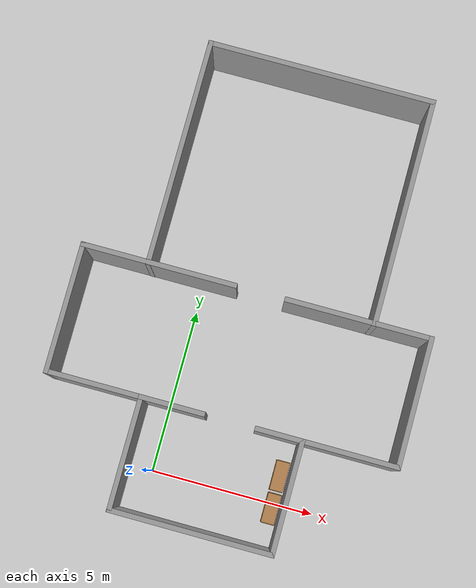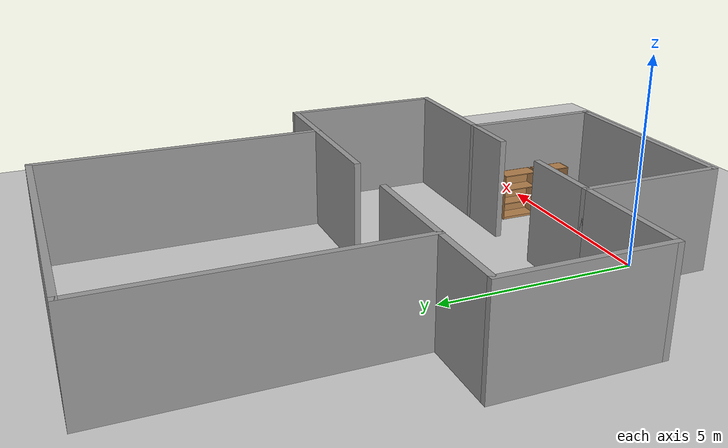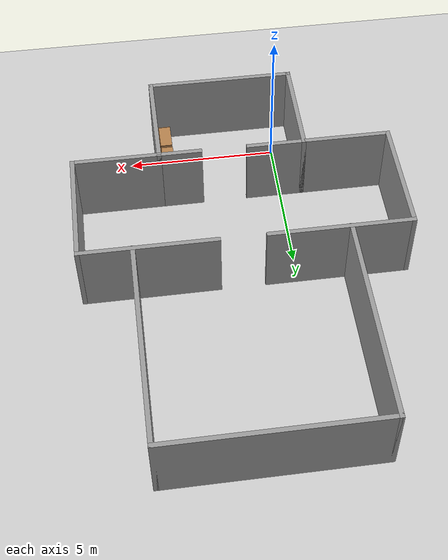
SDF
<sdf version="1.7">
 <world name="default">
  <light name="sun" type="directional">
   <pose>0 0 10 0 -0 0</pose>
   <diffuse>0.8 0.8 0.8 1</diffuse>
   <specular>0.2 0.2 0.2 1</specular>
   <attenuation>
    <range>1000</range>
    <constant>0.9</constant>
    <linear>0.01</linear>
    <quadratic>0.001</quadratic>
   </attenuation>
   <direction>-0.5 0.1 -0.9</direction>
   <spot><inner_angle>0</inner_angle><outer_angle>0</outer_angle><falloff>0</falloff></spot>
  </light>
  <model name="ground_plane">
   <static>1</static>
   <link name="link">
    <collision name="collision">
     <geometry><plane><normal>0 0 1</normal><size>100 100</size></plane></geometry>
     <surface><friction><ode><mu>100</mu><mu2>50</mu2></ode></friction></surface>
    </collision>
    <visual name="visual">
     <cast_shadows>0</cast_shadows>
     <geometry><plane><normal>0 0 1</normal><size>100 100</size></plane></geometry>
     <material>
      <script><uri>file://media/materials/scripts/gazebo.material</uri><name>Gazebo/Grey</name></script>
     </material>
    </visual>
   </link>
  </model>
  <gravity>0 0 -9.8</gravity>
  <magnetic_field>6e-06 2.3e-05 -4.2e-05</magnetic_field>
  <atmosphere type="adiabatic"/>
  <physics type="ode">
   <max_step_size>0.0005</max_step_size>
   <real_time_factor>1</real_time_factor>
   <real_time_update_rate>500</real_time_update_rate>
  </physics>
  <scene><ambient>0.4 0.4 0.4 1</ambient><background>0.7 0.7 0.7 1</background><shadows>1</shadows></scene>
  <spherical_coordinates>
   <surface_model>EARTH_WGS84</surface_model>
   <latitude_deg>0</latitude_deg>
   <longitude_deg>0</longitude_deg>
   <elevation>0</elevation>
   <heading_deg>0</heading_deg>
  </spherical_coordinates>
  <model name="conference_room3">
   <pose>1.663 5.64665 0 0 -0 0</pose>
   <link name="Wall_0">
    <collision name="Wall_0_Collision">
     <geometry><box><size>4.97355 0.15 2.5</size></box></geometry>
     <pose>0 0 1.25 0 -0 0</pose>
    </collision>
    <visual name="Wall_0_Visual">
     <pose>0 0 1.25 0 -0 0</pose>
     <geometry><box><size>4.97355 0.15 2.5</size></box></geometry>
     <material>
      <script><uri>file://media/materials/scripts/gazebo.material</uri><name>Gazebo/Grey</name></script>
      <ambient>1 1 1 1</ambient>
     </material>
     <meta><layer>0</layer></meta>
    </visual>
    <pose>0.006612 -7.02097 0 0 -0 0</pose>
   </link>
   <link name="Wall_10">
    <collision name="Wall_10_Collision">
     <geometry><box><size>4 0.15 2.5</size></box></geometry>
     <pose>0 0 1.25 0 -0 0</pose>
    </collision>
    <visual name="Wall_10_Visual">
     <pose>0 0 1.25 0 -0 0</pose>
     <geometry><box><size>4 0.15 2.5</size></box></geometry>
     <material>
      <script><uri>file://media/materials/scripts/gazebo.material</uri><name>Gazebo/Grey</name></script>
      <ambient>1 1 1 1</ambient>
     </material>
     <meta><layer>0</layer></meta>
    </visual>
    <pose>-5.26839 -1.74597 0 0 -0 1.5708</pose>
   </link>
   <link name="Wall_11">
    <collision name="Wall_11_Collision">
     <geometry><box><size>4.75 0.15 2.5</size></box></geometry>
     <pose>0 0 1.25 0 -0 0</pose>
    </collision>
    <visual name="Wall_11_Visual">
     <pose>0 0 1.25 0 -0 0</pose>
     <geometry><box><size>4.75 0.15 2.5</size></box></geometry>
     <material>
      <script><uri>file://media/materials/scripts/gazebo.material</uri><name>Gazebo/Grey</name></script>
      <ambient>1 1 1 1</ambient>
     </material>
     <meta><layer>0</layer></meta>
    </visual>
    <pose>-2.96839 0.179027 0 0 -0 0</pose>
   </link>
   <link name="Wall_13">
    <collision name="Wall_13_Collision">
     <geometry><box><size>3 0.15 2.5</size></box></geometry>
     <pose>0 0 1.25 0 -0 0</pose>
    </collision>
    <visual name="Wall_13_Visual">
     <pose>0 0 1.25 0 -0 0</pose>
     <geometry><box><size>3 0.15 2.5</size></box></geometry>
     <material>
      <script><uri>file://media/materials/scripts/gazebo.material</uri><name>Gazebo/Grey</name></script>
      <ambient>1 1 1 1</ambient>
     </material>
     <meta><layer>0</layer></meta>
    </visual>
    <pose>3.84339 -3.67097 0 0 -0 0</pose>
   </link>
   <link name="Wall_14">
    <collision name="Wall_14_Collision">
     <geometry><box><size>4 0.15 2.5</size></box></geometry>
     <pose>0 0 1.25 0 -0 0</pose>
    </collision>
    <visual name="Wall_14_Visual">
     <pose>0 0 1.25 0 -0 0</pose>
     <geometry><box><size>4 0.15 2.5</size></box></geometry>
     <material>
      <script><uri>file://media/materials/scripts/gazebo.material</uri><name>Gazebo/Grey</name></script>
      <ambient>1 1 1 1</ambient>
     </material>
     <meta><layer>0</layer></meta>
    </visual>
    <pose>5.26839 -1.74597 0 0 -0 1.5708</pose>
   </link>
   <link name="Wall_15">
    <collision name="Wall_15_Collision">
     <geometry><box><size>4.5 0.15 2.5</size></box></geometry>
     <pose>0 0 1.25 0 -0 0</pose>
    </collision>
    <visual name="Wall_15_Visual">
     <pose>0 0 1.25 0 -0 0</pose>
     <geometry><box><size>4.5 0.15 2.5</size></box></geometry>
     <material>
      <script><uri>file://media/materials/scripts/gazebo.material</uri><name>Gazebo/Grey</name></script>
      <ambient>1 1 1 1</ambient>
     </material>
     <meta><layer>0</layer></meta>
    </visual>
    <pose>3.09339 0.179027 0 0 -0 3.14159</pose>
   </link>
   <link name="Wall_2">
    <collision name="Wall_2_Collision">
     <geometry><box><size>3.5 0.15 2.5</size></box></geometry>
     <pose>0 0 1.25 0 -0 0</pose>
    </collision>
    <visual name="Wall_2_Visual">
     <pose>0 0 1.25 0 -0 0</pose>
     <geometry><box><size>3.5 0.15 2.5</size></box></geometry>
     <material>
      <script><uri>file://media/materials/scripts/gazebo.material</uri><name>Gazebo/Grey</name></script>
      <ambient>1 1 1 1</ambient>
     </material>
     <meta><layer>0</layer></meta>
    </visual>
    <pose>-2.41839 -5.34597 0 0 -0 1.5708</pose>
   </link>
   <link name="Wall_22">
    <collision name="Wall_22_Collision">
     <geometry><box><size>7 0.15 2.5</size></box></geometry>
     <pose>0 0 1.25 0 -0 0</pose>
    </collision>
    <visual name="Wall_22_Visual">
     <pose>0 0 1.25 0 -0 0</pose>
     <geometry><box><size>7 0.15 2.5</size></box></geometry>
     <material>
      <script><uri>file://media/materials/scripts/gazebo.material</uri><name>Gazebo/Grey</name></script>
      <ambient>1 1 1 1</ambient>
     </material>
     <meta><layer>0</layer></meta>
    </visual>
    <pose>-3.28329 3.59597 0 0 -0 1.5708</pose>
   </link>
   <link name="Wall_23">
    <collision name="Wall_23_Collision">
     <geometry><box><size>7 0.15 2.5</size></box></geometry>
     <pose>0 0 1.25 0 -0 0</pose>
    </collision>
    <visual name="Wall_23_Visual">
     <pose>0 0 1.25 0 -0 0</pose>
     <geometry><box><size>7 0.15 2.5</size></box></geometry>
     <material>
      <script><uri>file://media/materials/scripts/gazebo.material</uri><name>Gazebo/Grey</name></script>
      <ambient>1 1 1 1</ambient>
     </material>
     <meta><layer>0</layer></meta>
    </visual>
    <pose>0.141706 7.02097 0 0 -0 0</pose>
   </link>
   <link name="Wall_24">
    <collision name="Wall_24_Collision">
     <geometry><box><size>7 0.15 2.5</size></box></geometry>
     <pose>0 0 1.25 0 -0 0</pose>
    </collision>
    <visual name="Wall_24_Visual">
     <pose>0 0 1.25 0 -0 0</pose>
     <geometry><box><size>7 0.15 2.5</size></box></geometry>
     <material>
      <script><uri>file://media/materials/scripts/gazebo.material</uri><name>Gazebo/Grey</name></script>
      <ambient>1 1 1 1</ambient>
     </material>
     <meta><layer>0</layer></meta>
    </visual>
    <pose>3.5667 3.59597 0 0 -0 -1.5708</pose>
   </link>
   <link name="Wall_4">
    <collision name="Wall_4_Collision">
     <geometry><box><size>3.5 0.15 2.5</size></box></geometry>
     <pose>0 0 1.25 0 -0 0</pose>
    </collision>
    <visual name="Wall_4_Visual">
     <pose>0 0 1.25 0 -0 0</pose>
     <geometry><box><size>3.5 0.15 2.5</size></box></geometry>
     <material>
      <script><uri>file://media/materials/scripts/gazebo.material</uri><name>Gazebo/Grey</name></script>
      <ambient>1 1 1 1</ambient>
     </material>
     <meta><layer>0</layer></meta>
    </visual>
    <pose>2.41839 -5.34597 0 0 -0 1.5708</pose>
   </link>
   <link name="Wall_5">
    <collision name="Wall_5_Collision">
     <geometry><box><size>1.5 0.15 2.5</size></box></geometry>
     <pose>0 0 1.25 0 -0 0</pose>
    </collision>
    <visual name="Wall_5_Visual">
     <pose>0 0 1.25 0 -0 0</pose>
     <geometry><box><size>1.5 0.15 2.5</size></box></geometry>
     <material>
      <script><uri>file://media/materials/scripts/gazebo.material</uri><name>Gazebo/Grey</name></script>
      <ambient>1 1 1 1</ambient>
     </material>
     <meta><layer>0</layer></meta>
    </visual>
    <pose>1.74339 -3.67097 0 0 -0 3.14159</pose>
   </link>
   <link name="Wall_7">
    <collision name="Wall_7_Collision">
     <geometry><box><size>2 0.15 2.5</size></box></geometry>
     <pose>0 0 1.25 0 -0 0</pose>
    </collision>
    <visual name="Wall_7_Visual">
     <pose>0 0 1.25 0 -0 0</pose>
     <geometry><box><size>2 0.15 2.5</size></box></geometry>
     <material>
      <script><uri>file://media/materials/scripts/gazebo.material</uri><name>Gazebo/Grey</name></script>
      <ambient>1 1 1 1</ambient>
     </material>
     <meta><layer>0</layer></meta>
    </visual>
    <pose>-1.49339 -3.67097 0 0 -0 0</pose>
   </link>
   <link name="Wall_9">
    <collision name="Wall_9_Collision">
     <geometry><box><size>3 0.15 2.5</size></box></geometry>
     <pose>0 0 1.25 0 -0 0</pose>
    </collision>
    <visual name="Wall_9_Visual">
     <pose>0 0 1.25 0 -0 0</pose>
     <geometry><box><size>3 0.15 2.5</size></box></geometry>
     <material>
      <script><uri>file://media/materials/scripts/gazebo.material</uri><name>Gazebo/Grey</name></script>
      <ambient>1 1 1 1</ambient>
     </material>
     <meta><layer>0</layer></meta>
    </visual>
    <pose>-3.84339 -3.67097 0 0 -0 3.14159</pose>
   </link>
   <static>1</static>
  </model>
  <model name="bookshelf">
   <static>1</static>
   <link name="link">
    <inertial><mass>1</mass></inertial>
    <collision name="back">
     <pose>0 0.005 0.6 0 -0 0</pose>
     <geometry><box><size>0.9 0.01 1.2</size></box></geometry>
    </collision>
    <visual name="visual1">
     <pose>0 0.005 0.6 0 -0 0</pose>
     <geometry><box><size>0.9 0.01 1.2</size></box></geometry>
     <material>
      <script><uri>file://media/materials/scripts/gazebo.material</uri><name>Gazebo/Wood</name></script>
     </material>
    </visual>
    <collision name="left_side">
     <pose>0.45 -0.195 0.6 0 -0 0</pose>
     <geometry><box><size>0.02 0.4 1.2</size></box></geometry>
    </collision>
    <visual name="visual2">
     <pose>0.45 -0.195 0.6 0 -0 0</pose>
     <geometry><box><size>0.02 0.4 1.2</size></box></geometry>
     <material>
      <script><uri>file://media/materials/scripts/gazebo.material</uri><name>Gazebo/Wood</name></script>
     </material>
    </visual>
    <collision name="right_side">
     <pose>-0.45 -0.195 0.6 0 -0 0</pose>
     <geometry><box><size>0.02 0.4 1.2</size></box></geometry>
    </collision>
    <visual name="visual3">
     <pose>-0.45 -0.195 0.6 0 -0 0</pose>
     <geometry><box><size>0.02 0.4 1.2</size></box></geometry>
     <material>
      <script><uri>file://media/materials/scripts/gazebo.material</uri><name>Gazebo/Wood</name></script>
     </material>
    </visual>
    <collision name="bottom">
     <pose>0 -0.195 0.03 0 -0 0</pose>
     <geometry><box><size>0.88 0.4 0.06</size></box></geometry>
    </collision>
    <visual name="visual4">
     <pose>0 -0.195 0.03 0 -0 0</pose>
     <geometry><box><size>0.88 0.4 0.06</size></box></geometry>
     <material>
      <script><uri>file://media/materials/scripts/gazebo.material</uri><name>Gazebo/Wood</name></script>
     </material>
    </visual>
    <collision name="top">
     <pose>0 -0.195 1.19 0 -0 0</pose>
     <geometry><box><size>0.88 0.4 0.02</size></box></geometry>
    </collision>
    <visual name="visual5">
     <pose>0 -0.195 1.19 0 -0 0</pose>
     <geometry><box><size>0.88 0.4 0.02</size></box></geometry>
     <material>
      <script><uri>file://media/materials/scripts/gazebo.material</uri><name>Gazebo/Wood</name></script>
     </material>
    </visual>
    <collision name="low_shelf">
     <pose>0 -0.195 0.43 0 -0 0</pose>
     <geometry><box><size>0.88 0.4 0.02</size></box></geometry>
    </collision>
    <visual name="visual6">
     <pose>0 -0.195 0.43 0 -0 0</pose>
     <geometry><box><size>0.88 0.4 0.02</size></box></geometry>
     <material>
      <script><uri>file://media/materials/scripts/gazebo.material</uri><name>Gazebo/Wood</name></script>
     </material>
    </visual>
    <collision name="high_shelf">
     <pose>0 -0.195 0.8 0 -0 0</pose>
     <geometry><box><size>0.88 0.4 0.02</size></box></geometry>
    </collision>
    <visual name="visual7">
     <pose>0 -0.195 0.8 0 -0 0</pose>
     <geometry><box><size>0.88 0.4 0.02</size></box></geometry>
     <material>
      <script><uri>file://media/materials/scripts/gazebo.material</uri><name>Gazebo/Wood</name></script>
     </material>
    </visual>
   </link>
   <pose>3.93732 0.84932 0 0 0 -1.57</pose>
  </model>
  <model name="bookshelf_clone">
   <static>1</static>
   <link name="link">
    <inertial><mass>1</mass></inertial>
    <collision name="back">
     <pose>0 0.005 0.6 0 -0 0</pose>
     <geometry><box><size>0.9 0.01 1.2</size></box></geometry>
    </collision>
    <visual name="visual1">
     <pose>0 0.005 0.6 0 -0 0</pose>
     <geometry><box><size>0.9 0.01 1.2</size></box></geometry>
     <material>
      <script><uri>file://media/materials/scripts/gazebo.material</uri><name>Gazebo/Wood</name></script>
     </material>
    </visual>
    <collision name="left_side">
     <pose>0.45 -0.195 0.6 0 -0 0</pose>
     <geometry><box><size>0.02 0.4 1.2</size></box></geometry>
    </collision>
    <visual name="visual2">
     <pose>0.45 -0.195 0.6 0 -0 0</pose>
     <geometry><box><size>0.02 0.4 1.2</size></box></geometry>
     <material>
      <script><uri>file://media/materials/scripts/gazebo.material</uri><name>Gazebo/Wood</name></script>
     </material>
    </visual>
    <collision name="right_side">
     <pose>-0.45 -0.195 0.6 0 -0 0</pose>
     <geometry><box><size>0.02 0.4 1.2</size></box></geometry>
    </collision>
    <visual name="visual3">
     <pose>-0.45 -0.195 0.6 0 -0 0</pose>
     <geometry><box><size>0.02 0.4 1.2</size></box></geometry>
     <material>
      <script><uri>file://media/materials/scripts/gazebo.material</uri><name>Gazebo/Wood</name></script>
     </material>
    </visual>
    <collision name="bottom">
     <pose>0 -0.195 0.03 0 -0 0</pose>
     <geometry><box><size>0.88 0.4 0.06</size></box></geometry>
    </collision>
    <visual name="visual4">
     <pose>0 -0.195 0.03 0 -0 0</pose>
     <geometry><box><size>0.88 0.4 0.06</size></box></geometry>
     <material>
      <script><uri>file://media/materials/scripts/gazebo.material</uri><name>Gazebo/Wood</name></script>
     </material>
    </visual>
    <collision name="top">
     <pose>0 -0.195 1.19 0 -0 0</pose>
     <geometry><box><size>0.88 0.4 0.02</size></box></geometry>
    </collision>
    <visual name="visual5">
     <pose>0 -0.195 1.19 0 -0 0</pose>
     <geometry><box><size>0.88 0.4 0.02</size></box></geometry>
     <material>
      <script><uri>file://media/materials/scripts/gazebo.material</uri><name>Gazebo/Wood</name></script>
     </material>
    </visual>
    <collision name="low_shelf">
     <pose>0 -0.195 0.43 0 -0 0</pose>
     <geometry><box><size>0.88 0.4 0.02</size></box></geometry>
    </collision>
    <visual name="visual6">
     <pose>0 -0.195 0.43 0 -0 0</pose>
     <geometry><box><size>0.88 0.4 0.02</size></box></geometry>
     <material>
      <script><uri>file://media/materials/scripts/gazebo.material</uri><name>Gazebo/Wood</name></script>
     </material>
    </visual>
    <collision name="high_shelf">
     <pose>0 -0.195 0.8 0 -0 0</pose>
     <geometry><box><size>0.88 0.4 0.02</size></box></geometry>
    </collision>
    <visual name="visual7">
     <pose>0 -0.195 0.8 0 -0 0</pose>
     <geometry><box><size>0.88 0.4 0.02</size></box></geometry>
     <material>
      <script><uri>file://media/materials/scripts/gazebo.material</uri><name>Gazebo/Wood</name></script>
     </material>
    </visual>
   </link>
   <pose>3.94196 -0.13473 0 0 0 -1.57</pose>
  </model>
 </world>
</sdf>
